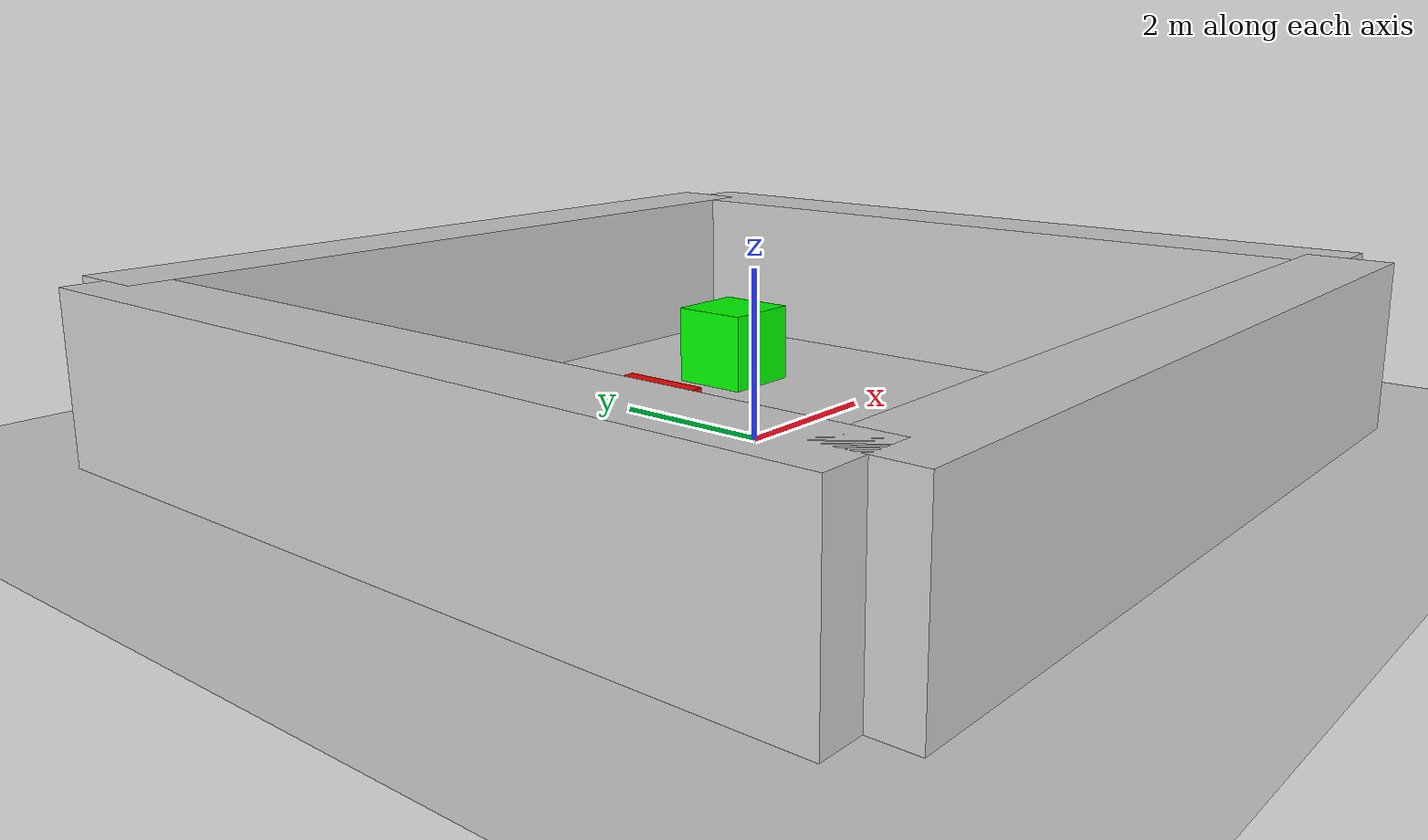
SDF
<sdf version="1.7">
 <world name="robotics_lab">
  <include><uri>model://ground_plane</uri></include>
  <include><uri>model://sun</uri></include>
  <model name="north_wall">
   <pose>0 5 1 0 0 0</pose>
   <link name="link">
    <collision name="collision"><geometry><box><size>10 1 2</size></box></geometry></collision>
    <visual name="visual">
     <geometry><box><size>10 1 2</size></box></geometry>
     <material><ambient>0.8 0.8 0.8 1</ambient><diffuse>0.8 0.8 0.8 1</diffuse></material>
    </visual>
   </link>
  </model>
  <model name="south_wall">
   <pose>0 -5 1 0 0 0</pose>
   <link name="link">
    <collision name="collision"><geometry><box><size>10 1 2</size></box></geometry></collision>
    <visual name="visual">
     <geometry><box><size>10 1 2</size></box></geometry>
     <material><ambient>0.8 0.8 0.8 1</ambient><diffuse>0.8 0.8 0.8 1</diffuse></material>
    </visual>
   </link>
  </model>
  <model name="west_wall">
   <pose>-5 0 1 0 0 1.5707</pose>
   <link name="link">
    <collision name="collision"><geometry><box><size>10 1 2</size></box></geometry></collision>
    <visual name="visual">
     <geometry><box><size>10 1 2</size></box></geometry>
     <material><ambient>0.8 0.8 0.8 1</ambient><diffuse>0.8 0.8 0.8 1</diffuse></material>
    </visual>
   </link>
  </model>
  <model name="east_wall">
   <pose>5 0 1 0 0 1.5707</pose>
   <link name="link">
    <collision name="collision"><geometry><box><size>10 1 2</size></box></geometry></collision>
    <visual name="visual">
     <geometry><box><size>10 1 2</size></box></geometry>
     <material><ambient>0.8 0.8 0.8 1</ambient><diffuse>0.8 0.8 0.8 1</diffuse></material>
    </visual>
   </link>
  </model>
  <model name="obstacle_1">
   <pose>-2 0 0.5 0 0 0</pose>
   <link name="link">
    <collision name="collision"><geometry><box><size>1 1 1</size></box></geometry></collision>
    <visual name="visual">
     <geometry><box><size>1 1 1</size></box></geometry>
     <material><ambient>1 0 0 1</ambient><diffuse>1 0 0 1</diffuse></material>
    </visual>
   </link>
  </model>
  <model name="obstacle_2">
   <pose>2 2 0.5 0 0 0</pose>
   <link name="link">
    <collision name="collision"><geometry><box><size>1 1 1</size></box></geometry></collision>
    <visual name="visual">
     <geometry><box><size>1 1 1</size></box></geometry>
     <material><ambient>0 1 0 1</ambient><diffuse>0 1 0 1</diffuse></material>
    </visual>
   </link>
  </model>
 </world>
</sdf>
